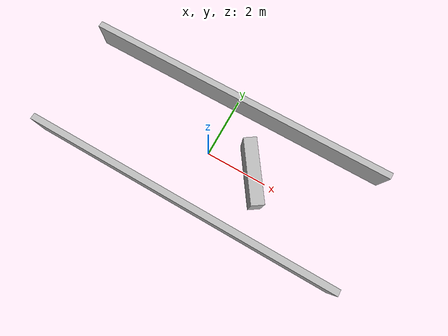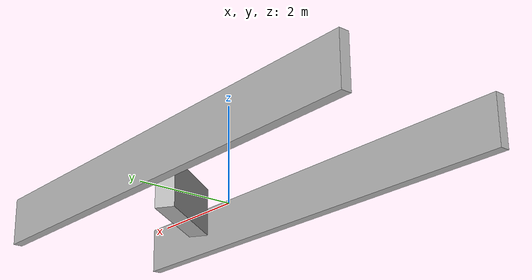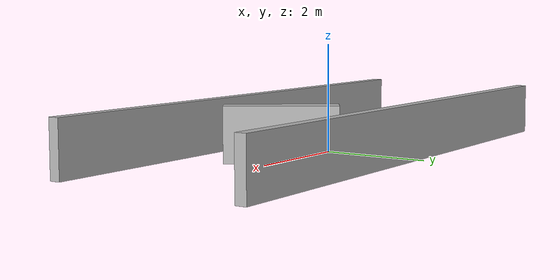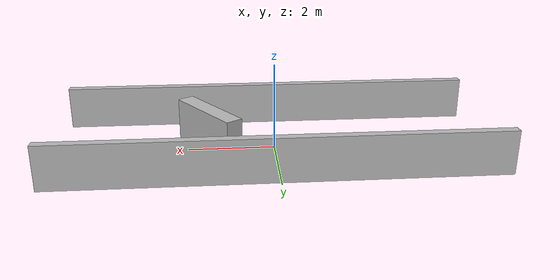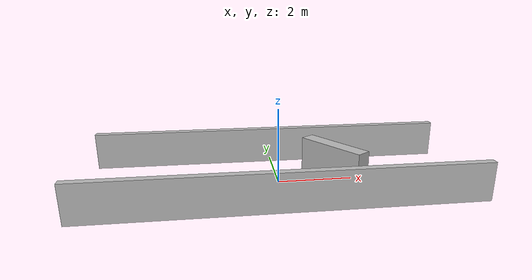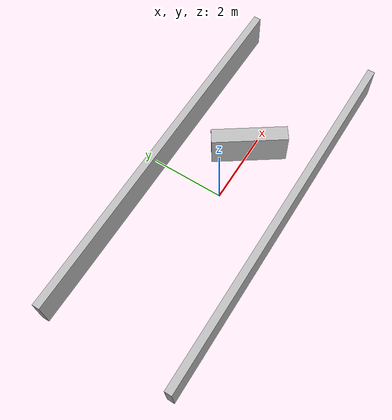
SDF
<?xml version="1.0"?>
<sdf version="1.6">
  <model name="walker_racecourse">
    <static>true</static>
    <link name="wall_a">
      <pose>0 -1.8 0.5 0 0 0</pose>
      <collision name="collision"><geometry><box><size>10 0.2 1</size></box></geometry></collision>
      <visual name="visual"><geometry><box><size>10 0.2 1</size></box></geometry></visual>
    </link>
    <link name="wall_b">
      <pose>0 1.8 0.5 0 0 0</pose>
      <collision name="collision"><geometry><box><size>10 0.2 1</size></box></geometry></collision>
      <visual name="visual"><geometry><box><size>10 0.2 1</size></box></geometry></visual>
    </link>
    <link name="barrier">
      <pose>1.5 0 0.5 0 0 0.6</pose>
      <collision name="collision"><geometry><box><size>0.4 2.0 1</size></box></geometry></collision>
      <visual name="visual"><geometry><box><size>0.4 2.0 1</size></box></geometry></visual>
    </link>
  </model>
</sdf>
